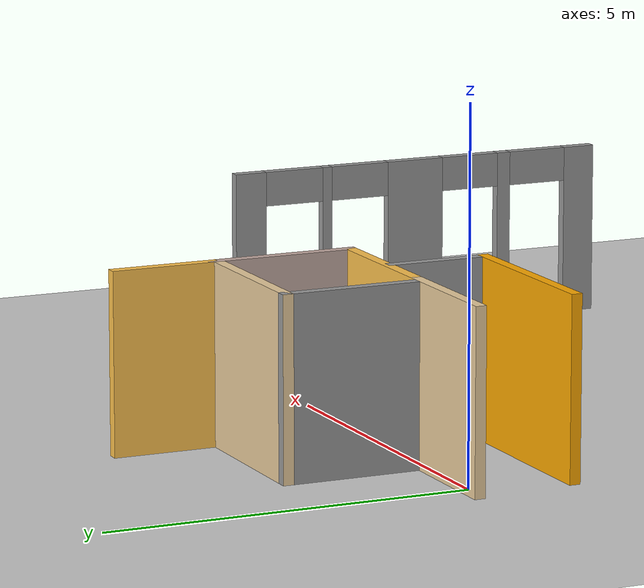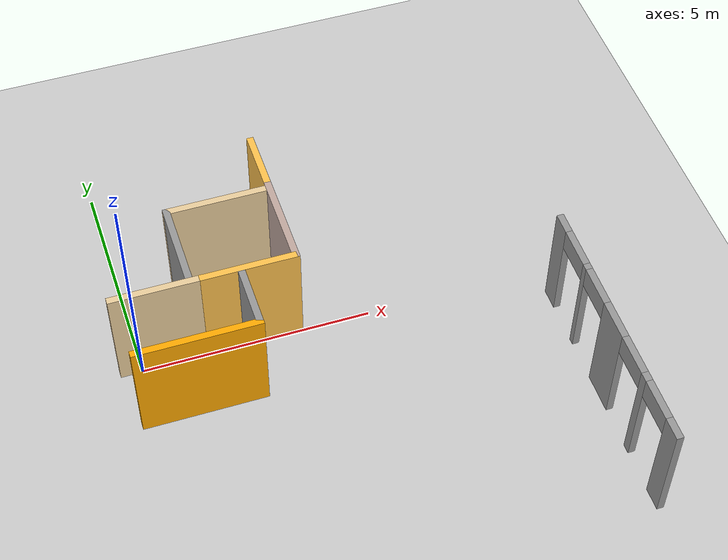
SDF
<sdf version="1.6">
 <world name="default">
  <model name="ground_plane">
   <static>1</static>
   <link name="link">
    <collision name="collision">
     <geometry><plane><normal>0 0 1</normal><size>100 100</size></plane></geometry>
     <surface><friction><ode><mu>100</mu><mu2>50</mu2></ode></friction></surface>
    </collision>
    <visual name="visual">
     <cast_shadows>0</cast_shadows>
     <geometry><plane><normal>0 0 1</normal><size>100 100</size></plane></geometry>
     <material>
      <script><uri>file://media/materials/scripts/gazebo.material</uri><name>Gazebo/Grey</name></script>
     </material>
    </visual>
   </link>
  </model>
  <model name="model">
   <link name="Wall_100">
    <pose>0.188472 0.1 0 0 0 -1.5708</pose>
    <visual name="Wall_100_Visual_8">
     <pose>1.96449 0 2.25 0 -0 0</pose>
     <geometry><box><size>0.9 0.15 0.5</size></box></geometry>
     <material>
      <script><uri>file://media/materials/scripts/gazebo.material</uri><name>Gazebo/Grey</name></script>
      <ambient>1 1 1 1</ambient>
      <shader type="pixel"/>
      <diffuse>0.7 0.7 0.7 1</diffuse>
      <specular>0.01 0.01 0.01 1</specular>
      <emissive>0 0 0 1</emissive>
     </material>
     <meta><layer>0</layer></meta>
    </visual>
    <visual name="Wall_100_Visual_0">
     <pose>-2.66165 0 1.25 0 -0 0</pose>
     <geometry><box><size>0.47671 0.15 2.5</size></box></geometry>
     <material>
      <script><uri>file://media/materials/scripts/gazebo.material</uri><name>Gazebo/Grey</name></script>
      <ambient>1 1 1 1</ambient>
      <shader type="pixel"/>
      <diffuse>0.7 0.7 0.7 1</diffuse>
      <specular>0.01 0.01 0.01 1</specular>
      <emissive>0 0 0 1</emissive>
     </material>
     <meta><layer>0</layer></meta>
    </visual>
    <visual name="Wall_100_Visual_1">
     <pose>-1.4503 0 1.25 0 -0 0</pose>
     <geometry><box><size>0.145974 0.15 2.5</size></box></geometry>
     <material>
      <script><uri>file://media/materials/scripts/gazebo.material</uri><name>Gazebo/Grey</name></script>
      <ambient>1 1 1 1</ambient>
      <shader type="pixel"/>
      <diffuse>0.7 0.7 0.7 1</diffuse>
      <specular>0.01 0.01 0.01 1</specular>
      <emissive>0 0 0 1</emissive>
     </material>
     <meta><layer>0</layer></meta>
    </visual>
    <visual name="Wall_100_Visual_2">
     <pose>-0.035162 0 1.25 0 -0 0</pose>
     <geometry><box><size>0.884308 0.15 2.5</size></box></geometry>
     <material>
      <script><uri>file://media/materials/scripts/gazebo.material</uri><name>Gazebo/Grey</name></script>
      <ambient>1 1 1 1</ambient>
      <shader type="pixel"/>
      <diffuse>0.7 0.7 0.7 1</diffuse>
      <specular>0.01 0.01 0.01 1</specular>
      <emissive>0 0 0 1</emissive>
     </material>
     <meta><layer>0</layer></meta>
    </visual>
    <visual name="Wall_100_Visual_3">
     <pose>1.41074 0 1.25 0 -0 0</pose>
     <geometry><box><size>0.207502 0.15 2.5</size></box></geometry>
     <material>
      <script><uri>file://media/materials/scripts/gazebo.material</uri><name>Gazebo/Grey</name></script>
      <ambient>1 1 1 1</ambient>
      <shader type="pixel"/>
      <diffuse>0.7 0.7 0.7 1</diffuse>
      <specular>0.01 0.01 0.01 1</specular>
      <emissive>0 0 0 1</emissive>
     </material>
     <meta><layer>0</layer></meta>
    </visual>
    <visual name="Wall_100_Visual_4">
     <pose>2.65725 0 1.25 0 -0 0</pose>
     <geometry><box><size>0.485506 0.15 2.5</size></box></geometry>
     <material>
      <script><uri>file://media/materials/scripts/gazebo.material</uri><name>Gazebo/Grey</name></script>
      <ambient>1 1 1 1</ambient>
      <shader type="pixel"/>
      <diffuse>0.7 0.7 0.7 1</diffuse>
      <specular>0.01 0.01 0.01 1</specular>
      <emissive>0 0 0 1</emissive>
     </material>
     <meta><layer>0</layer></meta>
    </visual>
    <visual name="Wall_100_Visual_5">
     <pose>-1.97329 0 2.25 0 -0 0</pose>
     <geometry><box><size>0.9 0.15 0.5</size></box></geometry>
     <material>
      <script><uri>file://media/materials/scripts/gazebo.material</uri><name>Gazebo/Grey</name></script>
      <ambient>1 1 1 1</ambient>
      <shader type="pixel"/>
      <diffuse>0.7 0.7 0.7 1</diffuse>
      <specular>0.01 0.01 0.01 1</specular>
      <emissive>0 0 0 1</emissive>
     </material>
     <meta><layer>0</layer></meta>
    </visual>
    <visual name="Wall_100_Visual_6">
     <pose>-0.927316 0 2.25 0 -0 0</pose>
     <geometry><box><size>0.9 0.15 0.5</size></box></geometry>
     <material>
      <script><uri>file://media/materials/scripts/gazebo.material</uri><name>Gazebo/Grey</name></script>
      <ambient>1 1 1 1</ambient>
      <shader type="pixel"/>
      <diffuse>0.7 0.7 0.7 1</diffuse>
      <specular>0.01 0.01 0.01 1</specular>
      <emissive>0 0 0 1</emissive>
     </material>
     <meta><layer>0</layer></meta>
    </visual>
    <visual name="Wall_100_Visual_7">
     <pose>0.856992 0 2.25 0 -0 0</pose>
     <geometry><box><size>0.9 0.15 0.5</size></box></geometry>
     <material>
      <script><uri>file://media/materials/scripts/gazebo.material</uri><name>Gazebo/Grey</name></script>
      <ambient>1 1 1 1</ambient>
      <shader type="pixel"/>
      <diffuse>0.7 0.7 0.7 1</diffuse>
      <specular>0.01 0.01 0.01 1</specular>
      <emissive>0 0 0 1</emissive>
     </material>
     <meta><layer>0</layer></meta>
    </visual>
    <collision name="Wall_100_Collision_0">
     <pose>-2.66165 0 1.25 0 -0 0</pose>
     <geometry><box><size>0.47671 0.15 2.5</size></box></geometry>
     <surface>
      <friction>
       <ode><mu>1</mu><mu2>1</mu2><fdir1>0 0 0</fdir1><slip1>0</slip1><slip2>0</slip2></ode>
       <torsional>
        <coefficient>1</coefficient>
        <patch_radius>0</patch_radius>
        <surface_radius>0</surface_radius>
        <use_patch_radius>1</use_patch_radius>
        <ode><slip>0</slip></ode>
       </torsional>
      </friction>
      <bounce><restitution_coefficient>0</restitution_coefficient><threshold>1e+06</threshold></bounce>
      <contact>
       <collide_without_contact>0</collide_without_contact>
       <collide_without_contact_bitmask>1</collide_without_contact_bitmask>
       <collide_bitmask>1</collide_bitmask>
       <ode>
        <soft_cfm>0</soft_cfm>
        <soft_erp>0.2</soft_erp>
        <kp>1e+13</kp>
        <kd>1</kd>
        <max_vel>0.01</max_vel>
        <min_depth>0</min_depth>
       </ode>
       <bullet>
        <split_impulse>1</split_impulse>
        <split_impulse_penetration_threshold>-0.01</split_impulse_penetration_threshold>
        <soft_cfm>0</soft_cfm>
        <soft_erp>0.2</soft_erp>
        <kp>1e+13</kp>
        <kd>1</kd>
       </bullet>
      </contact>
     </surface>
    </collision>
    <collision name="Wall_100_Collision_1">
     <pose>-1.4503 0 1.25 0 -0 0</pose>
     <geometry><box><size>0.145974 0.15 2.5</size></box></geometry>
     <surface>
      <friction>
       <ode><mu>1</mu><mu2>1</mu2><fdir1>0 0 0</fdir1><slip1>0</slip1><slip2>0</slip2></ode>
       <torsional>
        <coefficient>1</coefficient>
        <patch_radius>0</patch_radius>
        <surface_radius>0</surface_radius>
        <use_patch_radius>1</use_patch_radius>
        <ode><slip>0</slip></ode>
       </torsional>
      </friction>
      <bounce><restitution_coefficient>0</restitution_coefficient><threshold>1e+06</threshold></bounce>
      <contact>
       <collide_without_contact>0</collide_without_contact>
       <collide_without_contact_bitmask>1</collide_without_contact_bitmask>
       <collide_bitmask>1</collide_bitmask>
       <ode>
        <soft_cfm>0</soft_cfm>
        <soft_erp>0.2</soft_erp>
        <kp>1e+13</kp>
        <kd>1</kd>
        <max_vel>0.01</max_vel>
        <min_depth>0</min_depth>
       </ode>
       <bullet>
        <split_impulse>1</split_impulse>
        <split_impulse_penetration_threshold>-0.01</split_impulse_penetration_threshold>
        <soft_cfm>0</soft_cfm>
        <soft_erp>0.2</soft_erp>
        <kp>1e+13</kp>
        <kd>1</kd>
       </bullet>
      </contact>
     </surface>
    </collision>
    <collision name="Wall_100_Collision_2">
     <pose>-0.035162 0 1.25 0 -0 0</pose>
     <geometry><box><size>0.884308 0.15 2.5</size></box></geometry>
     <surface>
      <friction>
       <ode><mu>1</mu><mu2>1</mu2><fdir1>0 0 0</fdir1><slip1>0</slip1><slip2>0</slip2></ode>
       <torsional>
        <coefficient>1</coefficient>
        <patch_radius>0</patch_radius>
        <surface_radius>0</surface_radius>
        <use_patch_radius>1</use_patch_radius>
        <ode><slip>0</slip></ode>
       </torsional>
      </friction>
      <bounce><restitution_coefficient>0</restitution_coefficient><threshold>1e+06</threshold></bounce>
      <contact>
       <collide_without_contact>0</collide_without_contact>
       <collide_without_contact_bitmask>1</collide_without_contact_bitmask>
       <collide_bitmask>1</collide_bitmask>
       <ode>
        <soft_cfm>0</soft_cfm>
        <soft_erp>0.2</soft_erp>
        <kp>1e+13</kp>
        <kd>1</kd>
        <max_vel>0.01</max_vel>
        <min_depth>0</min_depth>
       </ode>
       <bullet>
        <split_impulse>1</split_impulse>
        <split_impulse_penetration_threshold>-0.01</split_impulse_penetration_threshold>
        <soft_cfm>0</soft_cfm>
        <soft_erp>0.2</soft_erp>
        <kp>1e+13</kp>
        <kd>1</kd>
       </bullet>
      </contact>
     </surface>
    </collision>
    <collision name="Wall_100_Collision_3">
     <pose>1.41074 0 1.25 0 -0 0</pose>
     <geometry><box><size>0.207502 0.15 2.5</size></box></geometry>
     <surface>
      <friction>
       <ode><mu>1</mu><mu2>1</mu2><fdir1>0 0 0</fdir1><slip1>0</slip1><slip2>0</slip2></ode>
       <torsional>
        <coefficient>1</coefficient>
        <patch_radius>0</patch_radius>
        <surface_radius>0</surface_radius>
        <use_patch_radius>1</use_patch_radius>
        <ode><slip>0</slip></ode>
       </torsional>
      </friction>
      <bounce><restitution_coefficient>0</restitution_coefficient><threshold>1e+06</threshold></bounce>
      <contact>
       <collide_without_contact>0</collide_without_contact>
       <collide_without_contact_bitmask>1</collide_without_contact_bitmask>
       <collide_bitmask>1</collide_bitmask>
       <ode>
        <soft_cfm>0</soft_cfm>
        <soft_erp>0.2</soft_erp>
        <kp>1e+13</kp>
        <kd>1</kd>
        <max_vel>0.01</max_vel>
        <min_depth>0</min_depth>
       </ode>
       <bullet>
        <split_impulse>1</split_impulse>
        <split_impulse_penetration_threshold>-0.01</split_impulse_penetration_threshold>
        <soft_cfm>0</soft_cfm>
        <soft_erp>0.2</soft_erp>
        <kp>1e+13</kp>
        <kd>1</kd>
       </bullet>
      </contact>
     </surface>
    </collision>
    <collision name="Wall_100_Collision_5">
     <pose>-1.97329 0 2.25 0 -0 0</pose>
     <geometry><box><size>0.9 0.15 0.5</size></box></geometry>
     <surface>
      <friction>
       <ode><mu>1</mu><mu2>1</mu2><fdir1>0 0 0</fdir1><slip1>0</slip1><slip2>0</slip2></ode>
       <torsional>
        <coefficient>1</coefficient>
        <patch_radius>0</patch_radius>
        <surface_radius>0</surface_radius>
        <use_patch_radius>1</use_patch_radius>
        <ode><slip>0</slip></ode>
       </torsional>
      </friction>
      <bounce><restitution_coefficient>0</restitution_coefficient><threshold>1e+06</threshold></bounce>
      <contact>
       <collide_without_contact>0</collide_without_contact>
       <collide_without_contact_bitmask>1</collide_without_contact_bitmask>
       <collide_bitmask>1</collide_bitmask>
       <ode>
        <soft_cfm>0</soft_cfm>
        <soft_erp>0.2</soft_erp>
        <kp>1e+13</kp>
        <kd>1</kd>
        <max_vel>0.01</max_vel>
        <min_depth>0</min_depth>
       </ode>
       <bullet>
        <split_impulse>1</split_impulse>
        <split_impulse_penetration_threshold>-0.01</split_impulse_penetration_threshold>
        <soft_cfm>0</soft_cfm>
        <soft_erp>0.2</soft_erp>
        <kp>1e+13</kp>
        <kd>1</kd>
       </bullet>
      </contact>
     </surface>
    </collision>
    <collision name="Wall_100_Collision_4">
     <pose>2.65725 0 1.25 0 -0 0</pose>
     <geometry><box><size>0.485506 0.15 2.5</size></box></geometry>
     <surface>
      <friction>
       <ode><mu>1</mu><mu2>1</mu2><fdir1>0 0 0</fdir1><slip1>0</slip1><slip2>0</slip2></ode>
       <torsional>
        <coefficient>1</coefficient>
        <patch_radius>0</patch_radius>
        <surface_radius>0</surface_radius>
        <use_patch_radius>1</use_patch_radius>
        <ode><slip>0</slip></ode>
       </torsional>
      </friction>
      <bounce><restitution_coefficient>0</restitution_coefficient><threshold>1e+06</threshold></bounce>
      <contact>
       <collide_without_contact>0</collide_without_contact>
       <collide_without_contact_bitmask>1</collide_without_contact_bitmask>
       <collide_bitmask>1</collide_bitmask>
       <ode>
        <soft_cfm>0</soft_cfm>
        <soft_erp>0.2</soft_erp>
        <kp>1e+13</kp>
        <kd>1</kd>
        <max_vel>0.01</max_vel>
        <min_depth>0</min_depth>
       </ode>
       <bullet>
        <split_impulse>1</split_impulse>
        <split_impulse_penetration_threshold>-0.01</split_impulse_penetration_threshold>
        <soft_cfm>0</soft_cfm>
        <soft_erp>0.2</soft_erp>
        <kp>1e+13</kp>
        <kd>1</kd>
       </bullet>
      </contact>
     </surface>
    </collision>
    <collision name="Wall_100_Collision_6">
     <pose>-0.927316 0 2.25 0 -0 0</pose>
     <geometry><box><size>0.9 0.15 0.5</size></box></geometry>
     <surface>
      <friction>
       <ode><mu>1</mu><mu2>1</mu2><fdir1>0 0 0</fdir1><slip1>0</slip1><slip2>0</slip2></ode>
       <torsional>
        <coefficient>1</coefficient>
        <patch_radius>0</patch_radius>
        <surface_radius>0</surface_radius>
        <use_patch_radius>1</use_patch_radius>
        <ode><slip>0</slip></ode>
       </torsional>
      </friction>
      <bounce><restitution_coefficient>0</restitution_coefficient><threshold>1e+06</threshold></bounce>
      <contact>
       <collide_without_contact>0</collide_without_contact>
       <collide_without_contact_bitmask>1</collide_without_contact_bitmask>
       <collide_bitmask>1</collide_bitmask>
       <ode>
        <soft_cfm>0</soft_cfm>
        <soft_erp>0.2</soft_erp>
        <kp>1e+13</kp>
        <kd>1</kd>
        <max_vel>0.01</max_vel>
        <min_depth>0</min_depth>
       </ode>
       <bullet>
        <split_impulse>1</split_impulse>
        <split_impulse_penetration_threshold>-0.01</split_impulse_penetration_threshold>
        <soft_cfm>0</soft_cfm>
        <soft_erp>0.2</soft_erp>
        <kp>1e+13</kp>
        <kd>1</kd>
       </bullet>
      </contact>
     </surface>
    </collision>
    <collision name="Wall_100_Collision_7">
     <pose>0.856992 0 2.25 0 -0 0</pose>
     <geometry><box><size>0.9 0.15 0.5</size></box></geometry>
     <surface>
      <friction>
       <ode><mu>1</mu><mu2>1</mu2><fdir1>0 0 0</fdir1><slip1>0</slip1><slip2>0</slip2></ode>
       <torsional>
        <coefficient>1</coefficient>
        <patch_radius>0</patch_radius>
        <surface_radius>0</surface_radius>
        <use_patch_radius>1</use_patch_radius>
        <ode><slip>0</slip></ode>
       </torsional>
      </friction>
      <bounce><restitution_coefficient>0</restitution_coefficient><threshold>1e+06</threshold></bounce>
      <contact>
       <collide_without_contact>0</collide_without_contact>
       <collide_without_contact_bitmask>1</collide_without_contact_bitmask>
       <collide_bitmask>1</collide_bitmask>
       <ode>
        <soft_cfm>0</soft_cfm>
        <soft_erp>0.2</soft_erp>
        <kp>1e+13</kp>
        <kd>1</kd>
        <max_vel>0.01</max_vel>
        <min_depth>0</min_depth>
       </ode>
       <bullet>
        <split_impulse>1</split_impulse>
        <split_impulse_penetration_threshold>-0.01</split_impulse_penetration_threshold>
        <soft_cfm>0</soft_cfm>
        <soft_erp>0.2</soft_erp>
        <kp>1e+13</kp>
        <kd>1</kd>
       </bullet>
      </contact>
     </surface>
    </collision>
    <collision name="Wall_100_Collision_8">
     <pose>1.96449 0 2.25 0 -0 0</pose>
     <geometry><box><size>0.9 0.15 0.5</size></box></geometry>
     <surface>
      <friction>
       <ode><mu>1</mu><mu2>1</mu2><fdir1>0 0 0</fdir1><slip1>0</slip1><slip2>0</slip2></ode>
       <torsional>
        <coefficient>1</coefficient>
        <patch_radius>0</patch_radius>
        <surface_radius>0</surface_radius>
        <use_patch_radius>1</use_patch_radius>
        <ode><slip>0</slip></ode>
       </torsional>
      </friction>
      <bounce><restitution_coefficient>0</restitution_coefficient><threshold>1e+06</threshold></bounce>
      <contact>
       <collide_without_contact>0</collide_without_contact>
       <collide_without_contact_bitmask>1</collide_without_contact_bitmask>
       <collide_bitmask>1</collide_bitmask>
       <ode>
        <soft_cfm>0</soft_cfm>
        <soft_erp>0.2</soft_erp>
        <kp>1e+13</kp>
        <kd>1</kd>
        <max_vel>0.01</max_vel>
        <min_depth>0</min_depth>
       </ode>
       <bullet>
        <split_impulse>1</split_impulse>
        <split_impulse_penetration_threshold>-0.01</split_impulse_penetration_threshold>
        <soft_cfm>0</soft_cfm>
        <soft_erp>0.2</soft_erp>
        <kp>1e+13</kp>
        <kd>1</kd>
       </bullet>
      </contact>
     </surface>
    </collision>
   </link>
   <link name="Wall_108">
    <pose>-5.31153 6.35 0 0 0 -1.5708</pose>
    <visual name="Wall_108_Visual">
     <pose>0 0 1.25 0 -0 0</pose>
     <geometry><box><size>1.5 0.15 2.5</size></box></geometry>
     <material>
      <script><uri>file://media/materials/scripts/gazebo.material</uri><name>Gazebo/Grey</name></script>
      <ambient>1 0.764706 0.305882 1</ambient>
      <shader type="pixel"/>
      <diffuse>0.7 0.7 0.7 1</diffuse>
      <specular>0.01 0.01 0.01 1</specular>
      <emissive>0 0 0 1</emissive>
     </material>
     <meta><layer>0</layer></meta>
    </visual>
    <collision name="Wall_108_Collision">
     <pose>0 0 1.25 0 -0 0</pose>
     <geometry><box><size>1.5 0.15 2.5</size></box></geometry>
     <surface>
      <friction>
       <ode><mu>1</mu><mu2>1</mu2><fdir1>0 0 0</fdir1><slip1>0</slip1><slip2>0</slip2></ode>
       <torsional>
        <coefficient>1</coefficient>
        <patch_radius>0</patch_radius>
        <surface_radius>0</surface_radius>
        <use_patch_radius>1</use_patch_radius>
        <ode><slip>0</slip></ode>
       </torsional>
      </friction>
      <bounce><restitution_coefficient>0</restitution_coefficient><threshold>1e+06</threshold></bounce>
      <contact>
       <collide_without_contact>0</collide_without_contact>
       <collide_without_contact_bitmask>1</collide_without_contact_bitmask>
       <collide_bitmask>1</collide_bitmask>
       <ode>
        <soft_cfm>0</soft_cfm>
        <soft_erp>0.2</soft_erp>
        <kp>1e+13</kp>
        <kd>1</kd>
        <max_vel>0.01</max_vel>
        <min_depth>0</min_depth>
       </ode>
       <bullet>
        <split_impulse>1</split_impulse>
        <split_impulse_penetration_threshold>-0.01</split_impulse_penetration_threshold>
        <soft_cfm>0</soft_cfm>
        <soft_erp>0.2</soft_erp>
        <kp>1e+13</kp>
        <kd>1</kd>
       </bullet>
      </contact>
     </surface>
    </collision>
   </link>
   <link name="Wall_109">
    <pose>-5.31153 4.675 0 0 0 -1.5708</pose>
    <visual name="Wall_109_Visual">
     <pose>0 0 1.25 0 -0 0</pose>
     <geometry><box><size>2.15 0.15 2.5</size></box></geometry>
     <material>
      <script><uri>file://media/materials/scripts/gazebo.material</uri><name>Gazebo/Grey</name></script>
      <ambient>0.760784 0.662745 0.627451 1</ambient>
      <shader type="pixel"/>
      <diffuse>0.7 0.7 0.7 1</diffuse>
      <specular>0.01 0.01 0.01 1</specular>
      <emissive>0 0 0 1</emissive>
     </material>
     <meta><layer>0</layer></meta>
    </visual>
    <collision name="Wall_109_Collision">
     <pose>0 0 1.25 0 -0 0</pose>
     <geometry><box><size>2.15 0.15 2.5</size></box></geometry>
     <surface>
      <friction>
       <ode><mu>1</mu><mu2>1</mu2><fdir1>0 0 0</fdir1><slip1>0</slip1><slip2>0</slip2></ode>
       <torsional>
        <coefficient>1</coefficient>
        <patch_radius>0</patch_radius>
        <surface_radius>0</surface_radius>
        <use_patch_radius>1</use_patch_radius>
        <ode><slip>0</slip></ode>
       </torsional>
      </friction>
      <bounce><restitution_coefficient>0</restitution_coefficient><threshold>1e+06</threshold></bounce>
      <contact>
       <collide_without_contact>0</collide_without_contact>
       <collide_without_contact_bitmask>1</collide_without_contact_bitmask>
       <collide_bitmask>1</collide_bitmask>
       <ode>
        <soft_cfm>0</soft_cfm>
        <soft_erp>0.2</soft_erp>
        <kp>1e+13</kp>
        <kd>1</kd>
        <max_vel>0.01</max_vel>
        <min_depth>0</min_depth>
       </ode>
       <bullet>
        <split_impulse>1</split_impulse>
        <split_impulse_penetration_threshold>-0.01</split_impulse_penetration_threshold>
        <soft_cfm>0</soft_cfm>
        <soft_erp>0.2</soft_erp>
        <kp>1e+13</kp>
        <kd>1</kd>
       </bullet>
      </contact>
     </surface>
    </collision>
   </link>
   <link name="Wall_113">
    <pose>-6.36153 3.675 0 0 -0 3.14159</pose>
    <visual name="Wall_113_Visual">
     <pose>0 0 1.25 0 -0 0</pose>
     <geometry><box><size>2.25 0.15 2.5</size></box></geometry>
     <material>
      <script><uri>file://media/materials/scripts/gazebo.material</uri><name>Gazebo/Grey</name></script>
      <ambient>1 0.764706 0.305882 1</ambient>
      <shader type="pixel"/>
      <diffuse>0.7 0.7 0.7 1</diffuse>
      <specular>0.01 0.01 0.01 1</specular>
      <emissive>0 0 0 1</emissive>
     </material>
     <meta><layer>0</layer></meta>
    </visual>
    <collision name="Wall_113_Collision">
     <pose>0 0 1.25 0 -0 0</pose>
     <geometry><box><size>2.25 0.15 2.5</size></box></geometry>
     <surface>
      <friction>
       <ode><mu>1</mu><mu2>1</mu2><fdir1>0 0 0</fdir1><slip1>0</slip1><slip2>0</slip2></ode>
       <torsional>
        <coefficient>1</coefficient>
        <patch_radius>0</patch_radius>
        <surface_radius>0</surface_radius>
        <use_patch_radius>1</use_patch_radius>
        <ode><slip>0</slip></ode>
       </torsional>
      </friction>
      <bounce><restitution_coefficient>0</restitution_coefficient><threshold>1e+06</threshold></bounce>
      <contact>
       <collide_without_contact>0</collide_without_contact>
       <collide_without_contact_bitmask>1</collide_without_contact_bitmask>
       <collide_bitmask>1</collide_bitmask>
       <ode>
        <soft_cfm>0</soft_cfm>
        <soft_erp>0.2</soft_erp>
        <kp>1e+13</kp>
        <kd>1</kd>
        <max_vel>0.01</max_vel>
        <min_depth>0</min_depth>
       </ode>
       <bullet>
        <split_impulse>1</split_impulse>
        <split_impulse_penetration_threshold>-0.01</split_impulse_penetration_threshold>
        <soft_cfm>0</soft_cfm>
        <soft_erp>0.2</soft_erp>
        <kp>1e+13</kp>
        <kd>1</kd>
       </bullet>
      </contact>
     </surface>
    </collision>
   </link>
   <link name="Wall_114">
    <pose>-8.28653 3.675 0 0 -0 3.14159</pose>
    <visual name="Wall_114_Visual">
     <pose>0 0 1.25 0 -0 0</pose>
     <geometry><box><size>1.9 0.15 2.5</size></box></geometry>
     <material>
      <script><uri>file://media/materials/scripts/gazebo.material</uri><name>Gazebo/Grey</name></script>
      <ambient>0.921569 0.807843 0.615686 1</ambient>
      <shader type="pixel"/>
      <diffuse>0.7 0.7 0.7 1</diffuse>
      <specular>0.01 0.01 0.01 1</specular>
      <emissive>0 0 0 1</emissive>
     </material>
     <meta><layer>0</layer></meta>
    </visual>
    <collision name="Wall_114_Collision">
     <pose>0 0 1.25 0 -0 0</pose>
     <geometry><box><size>1.9 0.15 2.5</size></box></geometry>
     <surface>
      <friction>
       <ode><mu>1</mu><mu2>1</mu2><fdir1>0 0 0</fdir1><slip1>0</slip1><slip2>0</slip2></ode>
       <torsional>
        <coefficient>1</coefficient>
        <patch_radius>0</patch_radius>
        <surface_radius>0</surface_radius>
        <use_patch_radius>1</use_patch_radius>
        <ode><slip>0</slip></ode>
       </torsional>
      </friction>
      <bounce><restitution_coefficient>0</restitution_coefficient><threshold>1e+06</threshold></bounce>
      <contact>
       <collide_without_contact>0</collide_without_contact>
       <collide_without_contact_bitmask>1</collide_without_contact_bitmask>
       <collide_bitmask>1</collide_bitmask>
       <ode>
        <soft_cfm>0</soft_cfm>
        <soft_erp>0.2</soft_erp>
        <kp>1e+13</kp>
        <kd>1</kd>
        <max_vel>0.01</max_vel>
        <min_depth>0</min_depth>
       </ode>
       <bullet>
        <split_impulse>1</split_impulse>
        <split_impulse_penetration_threshold>-0.01</split_impulse_penetration_threshold>
        <soft_cfm>0</soft_cfm>
        <soft_erp>0.2</soft_erp>
        <kp>1e+13</kp>
        <kd>1</kd>
       </bullet>
      </contact>
     </surface>
    </collision>
   </link>
   <link name="Wall_15">
    <pose>-7.53411 4.67076 0 0 -0 1.5708</pose>
    <visual name="Wall_15_Visual">
     <pose>0 0 1.25 0 -0 0</pose>
     <geometry><box><size>2 0.15 2.5</size></box></geometry>
     <material>
      <script><uri>file://media/materials/scripts/gazebo.material</uri><name>Gazebo/Grey</name></script>
      <ambient>1 1 1 1</ambient>
      <shader type="pixel"/>
      <diffuse>0.7 0.7 0.7 1</diffuse>
      <specular>0.01 0.01 0.01 1</specular>
      <emissive>0 0 0 1</emissive>
     </material>
     <meta><layer>0</layer></meta>
    </visual>
    <collision name="Wall_15_Collision">
     <pose>0 0 1.25 0 -0 0</pose>
     <geometry><box><size>2 0.15 2.5</size></box></geometry>
     <surface>
      <friction>
       <ode><mu>1</mu><mu2>1</mu2><fdir1>0 0 0</fdir1><slip1>0</slip1><slip2>0</slip2></ode>
       <torsional>
        <coefficient>1</coefficient>
        <patch_radius>0</patch_radius>
        <surface_radius>0</surface_radius>
        <use_patch_radius>1</use_patch_radius>
        <ode><slip>0</slip></ode>
       </torsional>
      </friction>
      <bounce><restitution_coefficient>0</restitution_coefficient><threshold>1e+06</threshold></bounce>
      <contact>
       <collide_without_contact>0</collide_without_contact>
       <collide_without_contact_bitmask>1</collide_without_contact_bitmask>
       <collide_bitmask>1</collide_bitmask>
       <ode>
        <soft_cfm>0</soft_cfm>
        <soft_erp>0.2</soft_erp>
        <kp>1e+13</kp>
        <kd>1</kd>
        <max_vel>0.01</max_vel>
        <min_depth>0</min_depth>
       </ode>
       <bullet>
        <split_impulse>1</split_impulse>
        <split_impulse_penetration_threshold>-0.01</split_impulse_penetration_threshold>
        <soft_cfm>0</soft_cfm>
        <soft_erp>0.2</soft_erp>
        <kp>1e+13</kp>
        <kd>1</kd>
       </bullet>
      </contact>
     </surface>
    </collision>
   </link>
   <link name="Wall_16">
    <pose>-6.48412 5.59576 0 0 -0 0</pose>
    <visual name="Wall_16_Visual">
     <pose>0 0 1.25 0 -0 0</pose>
     <geometry><box><size>2.25 0.15 2.5</size></box></geometry>
     <material>
      <script><uri>file://media/materials/scripts/gazebo.material</uri><name>Gazebo/Grey</name></script>
      <ambient>0.921569 0.807843 0.615686 1</ambient>
      <shader type="pixel"/>
      <diffuse>0.7 0.7 0.7 1</diffuse>
      <specular>0.01 0.01 0.01 1</specular>
      <emissive>0 0 0 1</emissive>
     </material>
     <meta><layer>0</layer></meta>
    </visual>
    <collision name="Wall_16_Collision">
     <pose>0 0 1.25 0 -0 0</pose>
     <geometry><box><size>2.25 0.15 2.5</size></box></geometry>
     <surface>
      <friction>
       <ode><mu>1</mu><mu2>1</mu2><fdir1>0 0 0</fdir1><slip1>0</slip1><slip2>0</slip2></ode>
       <torsional>
        <coefficient>1</coefficient>
        <patch_radius>0</patch_radius>
        <surface_radius>0</surface_radius>
        <use_patch_radius>1</use_patch_radius>
        <ode><slip>0</slip></ode>
       </torsional>
      </friction>
      <bounce><restitution_coefficient>0</restitution_coefficient><threshold>1e+06</threshold></bounce>
      <contact>
       <collide_without_contact>0</collide_without_contact>
       <collide_without_contact_bitmask>1</collide_without_contact_bitmask>
       <collide_bitmask>1</collide_bitmask>
       <ode>
        <soft_cfm>0</soft_cfm>
        <soft_erp>0.2</soft_erp>
        <kp>1e+13</kp>
        <kd>1</kd>
        <max_vel>0.01</max_vel>
        <min_depth>0</min_depth>
       </ode>
       <bullet>
        <split_impulse>1</split_impulse>
        <split_impulse_penetration_threshold>-0.01</split_impulse_penetration_threshold>
        <soft_cfm>0</soft_cfm>
        <soft_erp>0.2</soft_erp>
        <kp>1e+13</kp>
        <kd>1</kd>
       </bullet>
      </contact>
     </surface>
    </collision>
   </link>
   <link name="Wall_18">
    <pose>-6.47276 2.92924 0 0 0 -1.5708</pose>
    <visual name="Wall_18_Visual">
     <pose>0 0 1.25 0 -0 0</pose>
     <geometry><box><size>1.5 0.15 2.5</size></box></geometry>
     <material>
      <script><uri>file://media/materials/scripts/gazebo.material</uri><name>Gazebo/Grey</name></script>
      <ambient>1 1 1 1</ambient>
      <shader type="pixel"/>
      <diffuse>0.7 0.7 0.7 1</diffuse>
      <specular>0.01 0.01 0.01 1</specular>
      <emissive>0 0 0 1</emissive>
     </material>
     <meta><layer>0</layer></meta>
    </visual>
    <collision name="Wall_18_Collision">
     <pose>0 0 1.25 0 -0 0</pose>
     <geometry><box><size>1.5 0.15 2.5</size></box></geometry>
     <surface>
      <friction>
       <ode><mu>1</mu><mu2>1</mu2><fdir1>0 0 0</fdir1><slip1>0</slip1><slip2>0</slip2></ode>
       <torsional>
        <coefficient>1</coefficient>
        <patch_radius>0</patch_radius>
        <surface_radius>0</surface_radius>
        <use_patch_radius>1</use_patch_radius>
        <ode><slip>0</slip></ode>
       </torsional>
      </friction>
      <bounce><restitution_coefficient>0</restitution_coefficient><threshold>1e+06</threshold></bounce>
      <contact>
       <collide_without_contact>0</collide_without_contact>
       <collide_without_contact_bitmask>1</collide_without_contact_bitmask>
       <collide_bitmask>1</collide_bitmask>
       <ode>
        <soft_cfm>0</soft_cfm>
        <soft_erp>0.2</soft_erp>
        <kp>1e+13</kp>
        <kd>1</kd>
        <max_vel>0.01</max_vel>
        <min_depth>0</min_depth>
       </ode>
       <bullet>
        <split_impulse>1</split_impulse>
        <split_impulse_penetration_threshold>-0.01</split_impulse_penetration_threshold>
        <soft_cfm>0</soft_cfm>
        <soft_erp>0.2</soft_erp>
        <kp>1e+13</kp>
        <kd>1</kd>
       </bullet>
      </contact>
     </surface>
    </collision>
   </link>
   <link name="Wall_19">
    <pose>-7.74776 2.25424 0 0 -0 3.14159</pose>
    <visual name="Wall_19_Visual">
     <pose>0 0 1.25 0 -0 0</pose>
     <geometry><box><size>2.7 0.15 2.5</size></box></geometry>
     <material>
      <script><uri>file://media/materials/scripts/gazebo.material</uri><name>Gazebo/Grey</name></script>
      <ambient>1 0.666667 0 1</ambient>
      <shader type="pixel"/>
      <diffuse>0.7 0.7 0.7 1</diffuse>
      <specular>0.01 0.01 0.01 1</specular>
      <emissive>0 0 0 1</emissive>
     </material>
     <meta><layer>0</layer></meta>
    </visual>
    <collision name="Wall_19_Collision">
     <pose>0 0 1.25 0 -0 0</pose>
     <geometry><box><size>2.7 0.15 2.5</size></box></geometry>
     <surface>
      <friction>
       <ode><mu>1</mu><mu2>1</mu2><fdir1>0 0 0</fdir1><slip1>0</slip1><slip2>0</slip2></ode>
       <torsional>
        <coefficient>1</coefficient>
        <patch_radius>0</patch_radius>
        <surface_radius>0</surface_radius>
        <use_patch_radius>1</use_patch_radius>
        <ode><slip>0</slip></ode>
       </torsional>
      </friction>
      <bounce><restitution_coefficient>0</restitution_coefficient><threshold>1e+06</threshold></bounce>
      <contact>
       <collide_without_contact>0</collide_without_contact>
       <collide_without_contact_bitmask>1</collide_without_contact_bitmask>
       <collide_bitmask>1</collide_bitmask>
       <ode>
        <soft_cfm>0</soft_cfm>
        <soft_erp>0.2</soft_erp>
        <kp>1e+13</kp>
        <kd>1</kd>
        <max_vel>0.01</max_vel>
        <min_depth>0</min_depth>
       </ode>
       <bullet>
        <split_impulse>1</split_impulse>
        <split_impulse_penetration_threshold>-0.01</split_impulse_penetration_threshold>
        <soft_cfm>0</soft_cfm>
        <soft_erp>0.2</soft_erp>
        <kp>1e+13</kp>
        <kd>1</kd>
       </bullet>
      </contact>
     </surface>
    </collision>
   </link>
   <static>1</static>
   <pose>8.76473 -3.61191 0 0 -0 0</pose>
  </model>
 </world>
</sdf>
